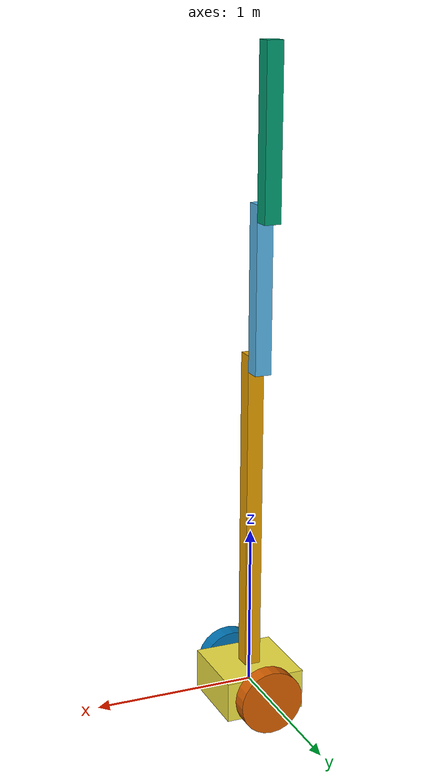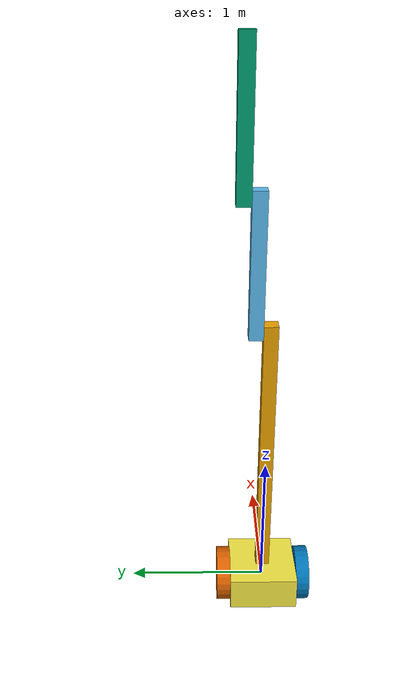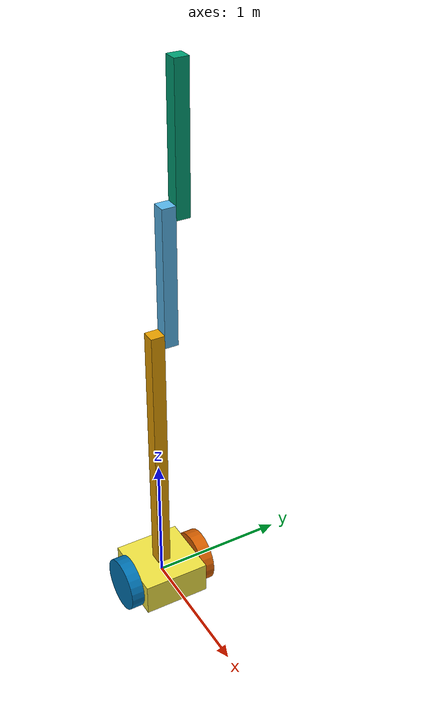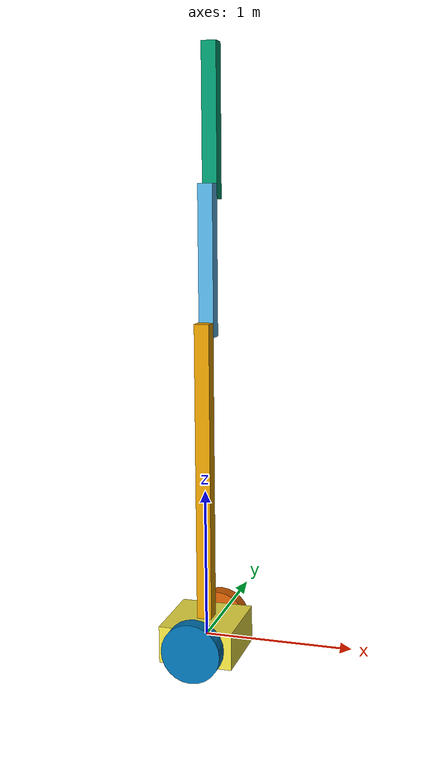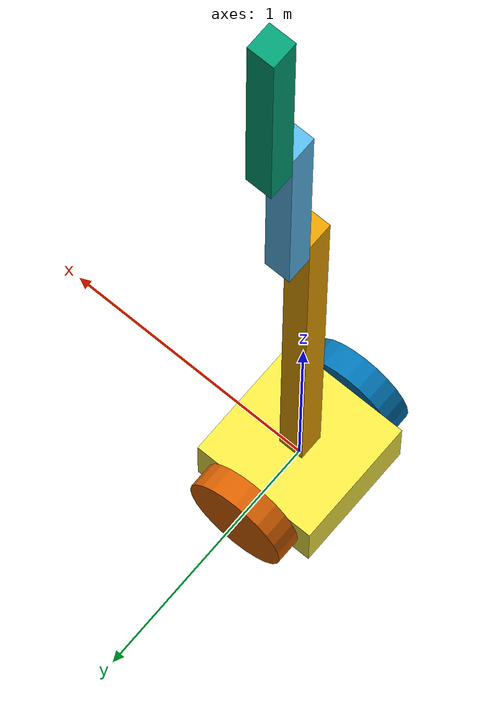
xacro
<?xml version="1.0"?>
<!-- Revolute-Revolute Manipulator -->
<robot name="rrbot" xmlns:xacro="http://www.ros.org/wiki/xacro">

  <!-- Constants for robot dimensions -->
  <xacro:property name="width" value="0.1" />   <!-- Beams are square in length and width -->
  <xacro:property name="height1" value="2" />   <!-- Link 1 -->
  <xacro:property name="height2" value="1" />   <!-- Link 2 -->
  <xacro:property name="height3" value="1" />   <!-- Link 3 -->
  <xacro:property name="axle_offset" value="0.05" /> <!-- Space between joint and end of beam -->
  <xacro:property name="damp" value="0.7" />    <!-- damping coefficient -->

<!-- Base Link -->
  <link name="base_link">
    <visual>
      <origin xyz="0 0 ${height1/2}" rpy="0 0 0"/>
      <geometry>
	<box size="${width} ${width} ${height1}"/>
      </geometry>
    </visual>

  </link>

  <!-- Joint between Base Link and Middle Link -->
  <joint name="joint_base_mid" type="revolute">
    <parent link="base_link"/>
    <child link="mid_link"/>
    <origin xyz="0 ${width} ${height1 - axle_offset}" rpy="0 0 0"/>
    <axis xyz="0 1 0"/>
    <dynamics damping="${damp}"/>
    <limit effort="100.0" velocity="0.5" lower="-3.14" upper="3.14" />
  </joint>

  <!-- Middle Link -->
  <link name="mid_link">
    <visual>
      <origin xyz="0 0 ${height2/2 - axle_offset}" rpy="0 0 0"/>
      <geometry>
	<box size="${width} ${width} ${height2}"/>
      </geometry>
    </visual>
   </link>

  <!-- Joint between Middle Link and Top Link -->
  <joint name="joint_mid_top" type="revolute">
    <parent link="mid_link"/>
    <child link="top_link"/>
    <origin xyz="0 ${width} ${height2 - axle_offset*2}" rpy="0 0 0"/>
    <axis xyz="0 1 0"/>
    <dynamics damping="${damp}"/>
    <limit effort="100.0" velocity="0.5" lower="-3.14" upper="3.14" />
  </joint>

  <!-- Top Link -->
  <link name="top_link">
    <visual>
      <origin xyz="0 0 ${height3/2 - axle_offset}" rpy="0 0 0"/>
      <geometry>
	<box size="${width} ${width} ${height3}"/>
      </geometry>
    </visual>

  </link>

  <!-- youbotbase -->
  <link name="youbotbase">
    <visual>
      <origin xyz="0 0 0" rpy="0 0 0" />
      <geometry>
          <box size="0.5 0.5 0.25"/>
      </geometry>
    </visual>
  </link>

   <joint name="joint_yuobotbase_baselink" type="revolute">
    <parent link="youbotbase"/>
    <child link="base_link"/>
    <origin xyz="0 0 0.125" rpy="0 0 0"/>
    <axis xyz="0 1 0"/>
    <dynamics damping="0.7"/>
    <limit effort="100.0" velocity="0.5" lower="-3.14" upper="3.14" />
  </joint>

 <!-- Right Wheel -->
  <link name="right_wheel">
    <visual>
      <origin xyz="0 0 0" rpy="1.570795 0 0" />
      <geometry>
          <cylinder length="0.1" radius="0.2" />
      </geometry>
    </visual>
  </link>
  <joint name="joint_right_wheel" type="continuous">
    <parent link="youbotbase"/>
    <child link="right_wheel"/>
    <origin xyz="0 -0.30 0" rpy="0 0 0" />
    <axis xyz="0 1 0" />
  </joint>

  <!-- Left Wheel -->
  <link name="left_wheel">
    <visual>
      <origin xyz="0 0 0" rpy="1.570795 0 0" />
      <geometry>
          <cylinder length="0.1" radius="0.2" />
      </geometry>
    </visual>
  </link>
  <joint name="joint_left_wheel" type="continuous">
    <parent link="youbotbase"/>
    <child link="left_wheel"/>
    <origin xyz="0 0.30 0" rpy="0 0 0" />
    <axis xyz="0 1 0" />
  </joint>

</robot>
